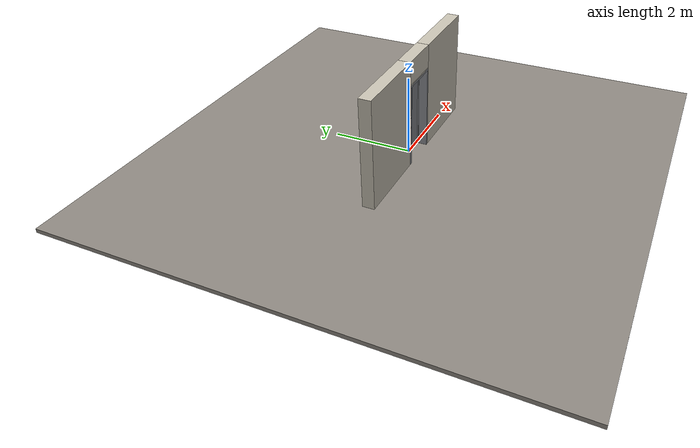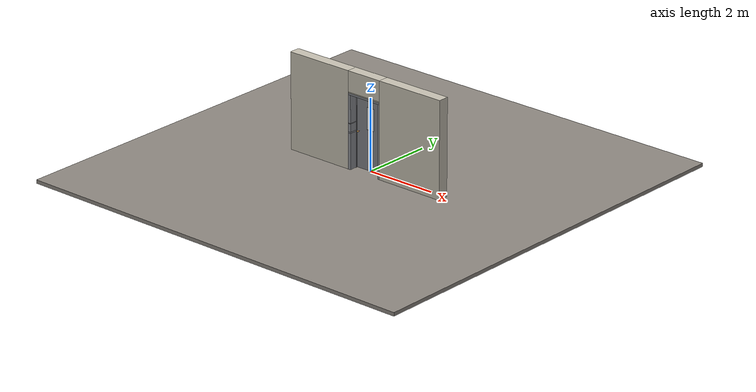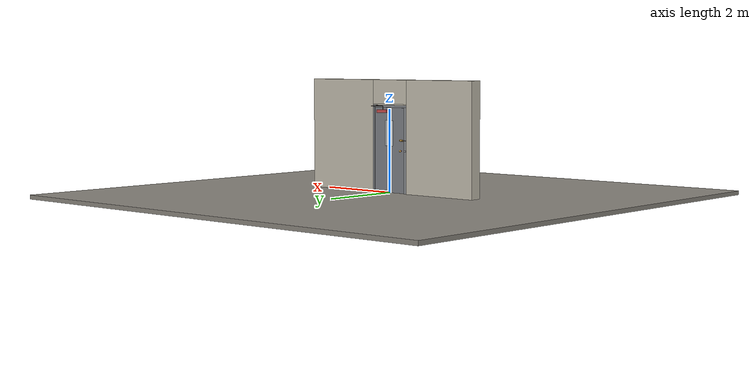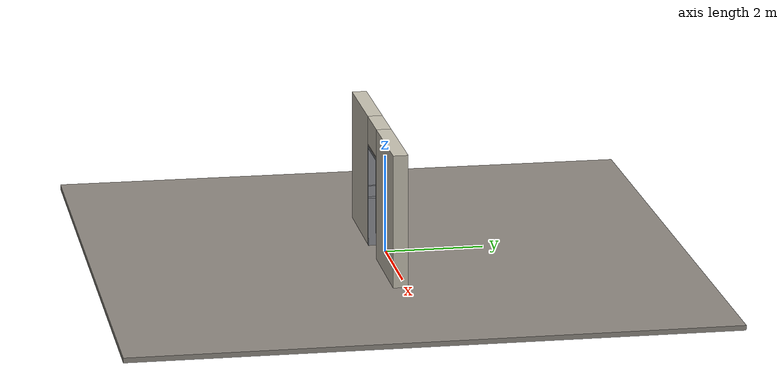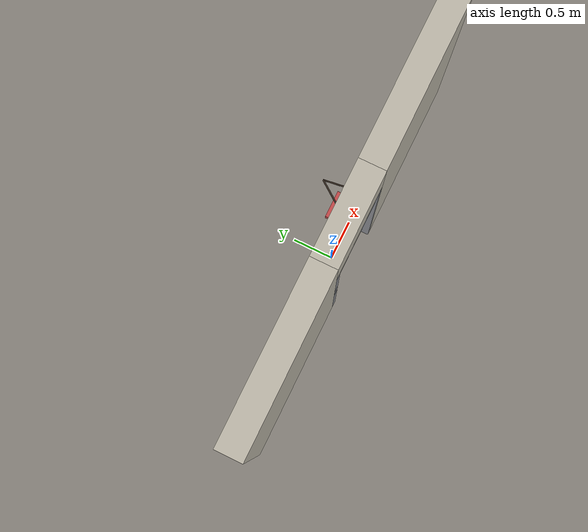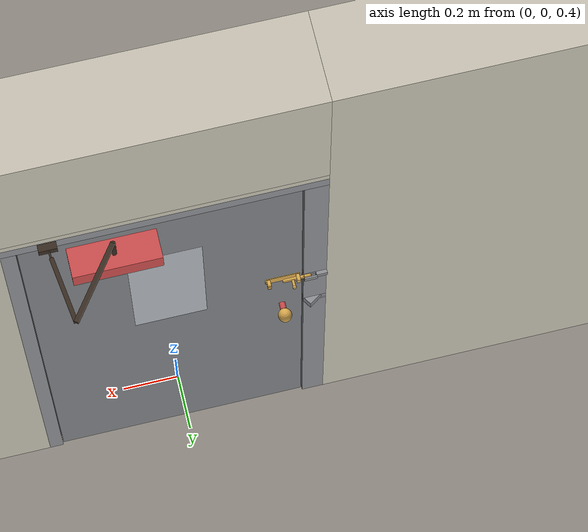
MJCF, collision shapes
<?xml version="1.0" ?>
<mujoco model="db0551_swing_single_full">
  <compiler angle="radian" meshdir="../../hardware" texturedir="../../textures" autolimits="true" inertiafromgeom="false"/>
  <option timestep="0.002" integrator="implicitfast" cone="elliptic" impratio="10" noslip_iterations="3">
    <flag multiccd="enable"/>
  </option>
  <size memory="16M"/>
  <default>
    <geom condim="4" solref="0.005 1" solimp="0.95 0.99 0.001"/>
    <joint solreflimit="0.005 1" solimplimit="0.95 0.99 0.001"/>
    <tendon solreflimit="0.005 1"/>
    <equality solref="0.002 1"/>
  </default>
  <visual>
    <headlight ambient="0.4 0.4 0.4" diffuse="0.7 0.7 0.7" specular="0.2 0.2 0.2"/>
    <quality shadowsize="4096"/>
    <map znear="0.01" zfar="60"/>
  </visual>
  <asset>
    <mesh name="closer_body_fdc4667657" file="closer_body_fdc4667657.obj"/>
    <mesh name="hinge_ed08f20e7f" file="hinge_ed08f20e7f.obj"/>
    <mesh name="hinge_jamb_1278ce3e25" file="hinge_jamb_1278ce3e25.obj"/>
    <mesh name="knob_d1888f6f03" file="knob_d1888f6f03.obj"/>
    <material name="mat_floor" rgba="0.55 0.53 0.5 1" specular="0.2" shininess="0.15" reflectance="0"/>
    <material name="mat_wall" rgba="0.78 0.76 0.7 1" specular="0.2" shininess="0.1" reflectance="0"/>
    <material name="mat_leaf" rgba="0.5 0.51 0.53 1" specular="0.23" shininess="0.62" reflectance="0.02"/>
    <material name="mat_glass" rgba="0.9 0.93 0.95 0.6" specular="0.2" shininess="0.5" reflectance="0.1"/>
    <material name="mat_hinge" rgba="0.65 0.66 0.68 1" specular="0.74" shininess="0.5" reflectance="0.36"/>
    <material name="mat_op_brass" rgba="0.85 0.66 0.3 1" specular="0.8" shininess="0.75" reflectance="0.4"/>
    <material name="mat_trim" rgba="0.85 0.66 0.3 1" specular="0.8" shininess="0.75" reflectance="0.4"/>
    <material name="mat_bolt" rgba="0.85 0.66 0.3 1" specular="0.8" shininess="0.75" reflectance="0.4"/>
    <material name="mat_frame" rgba="0.55 0.56 0.58 1" specular="0.8" shininess="0.55" reflectance="0.4"/>
    <material name="mat_closer" rgba="0.22 0.17 0.13 1" specular="0.8" shininess="0.6" reflectance="0.4"/>
    <texture name="skybox" type="skybox" builtin="gradient" rgb1="0.6 0.7 0.85" rgb2="0.9 0.92 0.95" width="256" height="256"/>
  </asset>
  <worldbody>
    <light name="sun" pos="1.5 -2.5 4" dir="-0.3 0.5 -0.8" directional="true" diffuse="0.8 0.8 0.8" specular="0.3 0.3 0.3" castshadow="true"/>
    <light name="fill" pos="-1.5 2.5 3" dir="0.3 -0.5 -0.7" directional="true" diffuse="0.35 0.35 0.4" castshadow="false"/>
    <camera name="robot_view" pos="0 -2.663187 1.734312" xyaxes="1 0 0 0 0.26963 0.962964" fovy="52"/>
    <camera name="far_view" pos="0 2.421187 1.734312" xyaxes="-1 0 0 0 -0.26963 0.962964" fovy="52"/>
    <camera name="iso" pos="-1.932062 -2.256438 2.141063" xyaxes="0.741536 -0.670913 0 0.242917 0.268487 0.932151" fovy="46"/>
    <camera name="detail_handle" pos="-0.2065 -0.8685 1.296" xyaxes="0.97561 0.219512 0 -0.070934 0.315262 0.94635" fovy="38"/>
    <geom name="floor" type="box" size="6 6 0.05" pos="0 0 -0.05" material="mat_floor" group="0" contype="1" conaffinity="1" friction="0.8 0.005 0.0001" density="2400"/>
    <geom name="wall_left" type="box" size="0.97975 0.15 1.35" pos="-1.52025 -0.121 1.35" material="mat_wall" group="0" contype="1" conaffinity="1" friction="0.6 0.005 0.0001" density="800"/>
    <geom name="wall_right" type="box" size="0.99475 0.15 1.35" pos="1.50525 -0.121 1.35" material="mat_wall" group="0" contype="1" conaffinity="1" friction="0.6 0.005 0.0001" density="800"/>
    <geom name="wall_header" type="box" size="0.5255 0.15 0.2875" pos="-0.015 -0.121 2.4125" material="mat_wall" group="0" contype="1" conaffinity="1" friction="0.6 0.005 0.0001" density="800"/>
    <geom name="hinge_0_jamb" type="mesh" mesh="hinge_jamb_1278ce3e25" pos="0.4575 0.029 0.259" quat="0 0 0 1" material="mat_hinge" group="1" contype="0" conaffinity="0" density="7850"/>
    <geom name="hinge_1_jamb" type="mesh" mesh="hinge_jamb_1278ce3e25" pos="0.4575 0.029 1.025" quat="0 0 0 1" material="mat_hinge" group="1" contype="0" conaffinity="0" density="7850"/>
    <geom name="hinge_2_jamb" type="mesh" mesh="hinge_jamb_1278ce3e25" pos="0.4575 0.029 1.861" quat="0 0 0 1" material="mat_hinge" group="1" contype="0" conaffinity="0" density="7850"/>
    <geom name="leaf_aux_bolt_keeper_b" type="box" size="0.014 0.003 0.0005" pos="-0.46 0.034 1.253" quat="0.5 0.5 0.5 0.5" material="mat_op_brass" group="1" contype="0" conaffinity="0" density="7800"/>
    <geom name="leaf_aux_bolt_keeper_l" type="box" size="0.003 0.01 0.0005" pos="-0.46 0.023 1.266" quat="0.5 0.5 0.5 0.5" material="mat_op_brass" group="1" contype="0" conaffinity="0" density="7800"/>
    <geom name="leaf_aux_bolt_keeper_t" type="box" size="0.014 0.003 0.0005" pos="-0.46 0.034 1.279" quat="0.5 0.5 0.5 0.5" material="mat_op_brass" group="1" contype="0" conaffinity="0" density="7800"/>
    <geom name="leaf_aux_bolt_keeper_r" type="box" size="0.003 0.01 0.0005" pos="-0.46 0.045 1.266" quat="0.5 0.5 0.5 0.5" material="mat_op_brass" group="1" contype="0" conaffinity="0" density="7800"/>
    <geom name="jamb_hinge" type="box" size="0.025 0.15 1.0225" pos="0.4855 -0.121 1.0225" material="mat_frame" group="0" contype="1" conaffinity="1" friction="0.6 0.005 0.0001" density="300"/>
    <geom name="strike_1016_wall_n" type="box" size="0.04 0.13075 0.0183" pos="-0.5005 -0.14025 1.016" material="mat_frame" group="0" contype="1" conaffinity="1" friction="0.6 0.005 0.0001" density="300"/>
    <geom name="strike_1016_wall_p" type="box" size="0.04 0.008 0.0183" pos="-0.5005 0.0175 1.016" material="mat_frame" group="0" contype="1" conaffinity="1" friction="0.6 0.005 0.0001" density="300"/>
    <geom name="strike_1016_ramp" type="box" size="0.04 0.018028 0.0183" pos="-0.503782 0.018312 1.016" quat="0.957092 0 0 0.289784" material="mat_frame" group="0" contype="1" conaffinity="1" friction="0.12 0.005 0.0001" density="300"/>
    <geom name="strike_1016_back" type="box" size="0.0285 0.0095 0.0183" pos="-0.512 0 1.016" material="mat_frame" group="0" contype="1" conaffinity="1" friction="0.6 0.005 0.0001" density="300"/>
    <geom name="strike_1266_wall_n" type="box" size="0.04 0.1485 0.01" pos="-0.5005 -0.1225 1.266" material="mat_frame" group="0" contype="1" conaffinity="1" friction="0.6 0.005 0.0001" density="300"/>
    <geom name="strike_1266_wall_p" type="box" size="0.022 0.003 0.01" pos="-0.4825 0.045 1.266" material="mat_frame" group="0" contype="1" conaffinity="1" friction="0.6 0.005 0.0001" density="300"/>
    <geom name="strike_1266_back" type="box" size="0.019 0.008 0.01" pos="-0.5215 0.034 1.266" material="mat_frame" group="0" contype="1" conaffinity="1" friction="0.6 0.005 0.0001" density="300"/>
    <geom name="jamb_strike_0" type="box" size="0.04 0.15 0.49885" pos="-0.5005 -0.121 0.49885" material="mat_frame" group="0" contype="1" conaffinity="1" friction="0.6 0.005 0.0001" density="300"/>
    <geom name="jamb_strike_1" type="box" size="0.04 0.15 0.11085" pos="-0.5005 -0.121 1.14515" material="mat_frame" group="0" contype="1" conaffinity="1" friction="0.6 0.005 0.0001" density="300"/>
    <geom name="jamb_strike_2" type="box" size="0.04 0.15 0.3845" pos="-0.5005 -0.121 1.6605" material="mat_frame" group="0" contype="1" conaffinity="1" friction="0.6 0.005 0.0001" density="300"/>
    <geom name="jamb_head" type="box" size="0.5255 0.15 0.025" pos="-0.015 -0.121 2.07" material="mat_frame" group="0" contype="1" conaffinity="1" friction="0.6 0.005 0.0001" density="300"/>
    <geom name="head_stud" type="box" size="0.5255 0.15 0.015" pos="-0.015 -0.121 2.11" material="mat_wall" group="0" contype="1" conaffinity="1" friction="0.6 0.005 0.0001" density="500"/>
    <geom name="stop_hinge" type="box" size="0.0055 0.016 1.0225" pos="0.455 -0.0385 1.0225" material="mat_frame" group="0" contype="1" conaffinity="1" friction="0.6 0.005 0.0001" density="300"/>
    <geom name="stop_strike" type="box" size="0.0055 0.016 1.0225" pos="-0.455 -0.0385 1.0225" material="mat_frame" group="0" contype="1" conaffinity="1" friction="0.6 0.005 0.0001" density="300"/>
    <geom name="stop_head" type="box" size="0.4605 0.016 0.0055" pos="0 -0.0385 2.0395" material="mat_frame" group="0" contype="1" conaffinity="1" friction="0.6 0.005 0.0001" density="300"/>
    <geom name="closer_bracket" type="box" size="0.03 0.012 0.014" pos="0.3605 0.041 2.075" material="mat_closer" group="1" contype="0" conaffinity="0" density="2700"/>
    <site name="approach_point" pos="0 -1.5 0" quat="1 0 0 0" size="0.05" rgba="0.2 0.9 0.2 0.5" group="4"/>
    <site name="goal_point" pos="0 1.5 0" quat="1 0 0 0" size="0.05" rgba="0.2 0.9 0.2 0.5" group="4"/>
    <site name="door_plane_center" pos="0 0 1.0225" quat="1 0 0 0" size="0.02" rgba="0.2 0.9 0.2 0.5" group="4"/>
    <body name="leaf" pos="0.4605 0 0">
      <inertial pos="-0.4205 0.015637 1.223009" mass="60.072084" quat="0.515031 -0.517819 -0.49463 -0.471114" diaginertia="3.698229413 25.10690653 28.703919179"/>
      <joint name="leaf_hinge" type="hinge" axis="0 0 -1" pos="-0.003 0.029 0" limited="true" range="0 1.745329" damping="12.25611" frictionloss="0.382581" stiffness="14.680452" springref="-2.019011" armature="0.02"/>
      <geom name="leaf_slab" type="box" size="0.457 0.022 1.016" pos="-0.46 0 1.025" material="mat_leaf" group="0" contype="1" conaffinity="1" friction="0.4 0.005 0.0001" density="1"/>
      <geom name="leaf_glass_0" type="box" size="0.125 0.0228 0.3048" pos="-0.46 0 1.4314" material="mat_glass" group="1" contype="0" conaffinity="0" density="1"/>
      <geom name="hinge_0" type="mesh" mesh="hinge_ed08f20e7f" pos="-0.003 0.029 0.259" quat="0 0 0 1" material="mat_hinge" group="1" contype="0" conaffinity="0" density="7850"/>
      <geom name="hinge_1" type="mesh" mesh="hinge_ed08f20e7f" pos="-0.003 0.029 1.025" quat="0 0 0 1" material="mat_hinge" group="1" contype="0" conaffinity="0" density="7850"/>
      <geom name="hinge_2" type="mesh" mesh="hinge_ed08f20e7f" pos="-0.003 0.029 1.861" quat="0 0 0 1" material="mat_hinge" group="1" contype="0" conaffinity="0" density="7850"/>
      <geom name="leaf_latch_bolt_faceplate" type="box" size="0.0006 0.014 0.0283" pos="-0.9164 0 1.016" material="mat_bolt" group="1" contype="0" conaffinity="0" density="8500"/>
      <geom name="leaf_aux_bolt_plate" type="box" size="0.0595 0.019 0.001" pos="-0.8495 0.023 1.266" quat="0 0 0.707107 0.707107" material="mat_op_brass" group="1" contype="0" conaffinity="0" density="7800"/>
      <geom name="leaf_aux_bolt_guide_0_leg_n" type="box" size="0.006 0.002 0.0125" pos="-0.901 0.0345 1.255" quat="0 0 0.707107 0.707107" material="mat_op_brass" group="1" contype="0" conaffinity="0" density="7800"/>
      <geom name="leaf_aux_bolt_guide_0_leg_p" type="box" size="0.006 0.002 0.0125" pos="-0.901 0.0345 1.277" quat="0 0 0.707107 0.707107" material="mat_op_brass" group="1" contype="0" conaffinity="0" density="7800"/>
      <geom name="leaf_aux_bolt_guide_0_bridge" type="box" size="0.006 0.013 0.002" pos="-0.901 0.045 1.266" quat="0 0 0.707107 0.707107" material="mat_op_brass" group="1" contype="0" conaffinity="0" density="7800"/>
      <geom name="leaf_aux_bolt_guide_1_leg_n" type="box" size="0.006 0.002 0.0125" pos="-0.8 0.0345 1.255" quat="0 0 0.707107 0.707107" material="mat_op_brass" group="1" contype="0" conaffinity="0" density="7800"/>
      <geom name="leaf_aux_bolt_guide_1_leg_p" type="box" size="0.006 0.002 0.0125" pos="-0.8 0.0345 1.277" quat="0 0 0.707107 0.707107" material="mat_op_brass" group="1" contype="0" conaffinity="0" density="7800"/>
      <geom name="leaf_aux_bolt_guide_1_bridge" type="box" size="0.006 0.013 0.002" pos="-0.8 0.045 1.266" quat="0 0 0.707107 0.707107" material="mat_op_brass" group="1" contype="0" conaffinity="0" density="7800"/>
      <geom name="closer_body" type="mesh" mesh="closer_body_fdc4667657" pos="-0.3 0.022 1.952" quat="0 0 0.707107 0.707107" material="mat_closer" group="1" contype="0" conaffinity="0" density="2000"/>
      <geom name="closer_body_col" type="box" size="0.145 0.05 0.035" pos="-0.3 0.072 1.952" material="mat_closer" group="3" contype="1" conaffinity="1" rgba="0.8 0.3 0.3 0.25" friction="0.6 0.005 0.0001" density="2000"/>
      <geom name="closer_pinion_shaft" type="cylinder" size="0.008 0.0615" pos="-0.3 0.072 2.0135" material="mat_closer" group="1" contype="0" conaffinity="0" density="2700"/>
      <site name="leaf_edge_mid" pos="-0.917 0 1.016" quat="1 0 0 0" size="0.02" rgba="0.2 0.9 0.2 0.5" group="4"/>
      <body name="leaf_handle" pos="-0.847 0 1.016">
        <inertial pos="0 0 0" mass="1.151952" quat="0.707107 0 0 -0.707107" diaginertia="0.000312514 0.004264603 0.004264603"/>
        <joint name="leaf_handle_hinge" type="hinge" axis="0 1 0" limited="true" range="0 0.87" damping="0.143614" frictionloss="0.038" stiffness="0.5" springref="-0.5" armature="0.01"/>
        <geom name="leaf_handle_spindle" type="cylinder" size="0.006 0.03" pos="0 0 0" quat="0.707107 -0.707107 0 0" material="mat_op_brass" group="1" contype="0" conaffinity="0" density="7850"/>
        <geom name="leaf_handle_knob_n" type="mesh" mesh="knob_d1888f6f03" pos="0 -0.022 0" quat="0 0 -0.707107 0.707107" material="mat_op_brass" group="1" contype="0" conaffinity="0" density="3000"/>
        <geom name="leaf_handle_knob_col_n" type="sphere" size="0.0243" pos="0 -0.0685 0" material="mat_op_brass" group="0" contype="1" conaffinity="1" friction="0.9 0.01 0.0001" density="3000"/>
        <geom name="leaf_handle_knob_neck_n" type="cylinder" size="0.011 0.012" pos="0 -0.034 0" quat="0.707107 -0.707107 0 0" material="mat_op_brass" group="3" contype="1" conaffinity="1" rgba="0.8 0.3 0.3 0.25" friction="0.6 0.005 0.0001" density="3000"/>
        <geom name="leaf_handle_knob_p" type="mesh" mesh="knob_d1888f6f03" pos="0 0.022 0" quat="0 0 0.707107 0.707107" material="mat_op_brass" group="1" contype="0" conaffinity="0" density="3000"/>
        <geom name="leaf_handle_knob_col_p" type="sphere" size="0.0243" pos="0 0.0685 0" material="mat_op_brass" group="0" contype="1" conaffinity="1" friction="0.9 0.01 0.0001" density="3000"/>
        <geom name="leaf_handle_knob_neck_p" type="cylinder" size="0.011 0.012" pos="0 0.034 0" quat="0.707107 -0.707107 0 0" material="mat_op_brass" group="3" contype="1" conaffinity="1" rgba="0.8 0.3 0.3 0.25" friction="0.6 0.005 0.0001" density="3000"/>
        <site name="leaf_handle_grip_n" pos="0 -0.0685 0" quat="1 0 0 0" size="0.012" rgba="0.2 0.9 0.2 0.5" group="4"/>
        <site name="leaf_handle_grip_p" pos="0 0.0685 0" quat="1 0 0 0" size="0.012" rgba="0.2 0.9 0.2 0.5" group="4"/>
      </body>
      <body name="leaf_latch_bolt" pos="-0.917 0 1.016">
        <inertial pos="0.0055 0 0" mass="0.074627" quat="0.92388 0.382683 0 0" diaginertia="0.000002271 0.000013255 0.000013255"/>
        <joint name="leaf_latch_bolt_slide" type="slide" axis="1 0 0" limited="true" range="0 0.019" damping="2" frictionloss="0.3" stiffness="600" springref="-0.01" armature="0.1"/>
        <geom name="leaf_latch_bolt_capsule" type="capsule" size="0.008 0.0165" pos="0.0055 0 0" quat="0.707107 0 -0.707107 0" material="mat_bolt" group="0" contype="1" conaffinity="1" friction="0.2 0.005 0.0001" density="8500"/>
      </body>
      <body name="leaf_aux_bolt" pos="-0.917 0.034 1.266">
        <inertial pos="0.023563 0.00492 0" mass="0.111784" quat="0.998595 0 0 0.05299" diaginertia="0.000012212 0.000071985 0.000082309"/>
        <joint name="leaf_aux_bolt_slide" type="slide" axis="1 0 0" limited="true" range="0 0.001" damping="1" frictionloss="1" armature="0.1"/>
        <geom name="leaf_aux_bolt_rod" type="capsule" size="0.006 0.044" pos="0.02 0 0" quat="0.707107 0 -0.707107 0" material="mat_op_brass" group="0" contype="1" conaffinity="1" friction="0.6 0.005 0.0001" density="7850"/>
        <geom name="leaf_aux_bolt_knob" type="capsule" size="0.005 0.01" pos="0.035 0.015 0" quat="0.707107 -0.707107 0 0" material="mat_op_brass" group="0" contype="1" conaffinity="1" friction="0.6 0.005 0.0001" density="7850"/>
        <geom name="leaf_aux_bolt_knob_end" type="sphere" size="0.00675" pos="0.035 0.03 0" material="mat_op_brass" group="1" contype="0" conaffinity="0" density="7850"/>
        <site name="leaf_aux_bolt_grip" pos="0.035 0.034 0" quat="1 0 0 0" size="0.012" rgba="0.2 0.9 0.2 0.5" group="4"/>
      </body>
      <body name="closer_arm_main" pos="-0.3 0.072 2.075" quat="0.890947 0 0 0.454107">
        <inertial pos="0.14 0 0" mass="0.12096" quat="1 0 0 0" diaginertia="0.000003588 0.00079128 0.000792852"/>
        <joint name="closer_pinion" type="hinge" axis="0 0 1" limited="false" damping="0.01" armature="0.002"/>
        <geom name="closer_arm_main_geom" type="box" size="0.14 0.008 0.005" pos="0.14 0 0" material="mat_closer" group="1" contype="0" conaffinity="0" density="2700"/>
        <body name="closer_arm_fore" pos="0.28 0 0" quat="0.373215 0 0 -0.927745">
          <inertial pos="0.128088 0 0" mass="0.076531" quat="1 0 0 0" diaginertia="0.000001771 0.000437665 0.000438201"/>
          <joint name="closer_elbow" type="hinge" axis="0 0 1" limited="false" damping="0.01" armature="0.002"/>
          <geom name="closer_arm_fore_geom" type="box" size="0.1125 0.007 0.004" pos="0.1125 0 0" material="mat_closer" group="1" contype="0" conaffinity="0" density="2700"/>
          <geom name="closer_fore_neck" type="box" size="0.0175 0.003 0.003" pos="0.2425 0 0" material="mat_closer" group="1" contype="0" conaffinity="0" density="2700"/>
          <geom name="closer_fore_pivot" type="cylinder" size="0.005 0.012" pos="0.26 0 0" material="mat_closer" group="1" contype="0" conaffinity="0" density="2700"/>
        </body>
      </body>
    </body>
  </worldbody>
  <tendon>
    <fixed name="leaf_latch_bolt_coupling" limited="true" range="0 10">
      <joint joint="leaf_latch_bolt_slide" coef="1"/>
      <joint joint="leaf_handle_hinge" coef="-0.023457"/>
    </fixed>
  </tendon>
  <equality>
    <connect name="closer_arm_connect" body1="closer_arm_fore" body2="world" anchor="0.26 0 0" active="true"/>
  </equality>
  <contact>
    <exclude body1="closer_arm_main" body2="leaf"/>
    <exclude body1="closer_arm_fore" body2="leaf"/>
    <exclude body1="closer_arm_main" body2="closer_arm_fore"/>
  </contact>
  <sensor>
    <jointpos name="leaf_hinge_pos" joint="leaf_hinge"/>
    <jointvel name="leaf_hinge_vel" joint="leaf_hinge"/>
    <jointpos name="leaf_handle_hinge_pos" joint="leaf_handle_hinge"/>
    <jointvel name="leaf_handle_hinge_vel" joint="leaf_handle_hinge"/>
    <jointpos name="leaf_latch_bolt_slide_pos" joint="leaf_latch_bolt_slide"/>
    <jointvel name="leaf_latch_bolt_slide_vel" joint="leaf_latch_bolt_slide"/>
    <jointpos name="leaf_aux_bolt_slide_pos" joint="leaf_aux_bolt_slide"/>
    <jointvel name="leaf_aux_bolt_slide_vel" joint="leaf_aux_bolt_slide"/>
  </sensor>
</mujoco>
